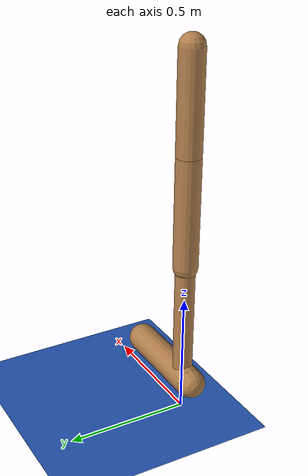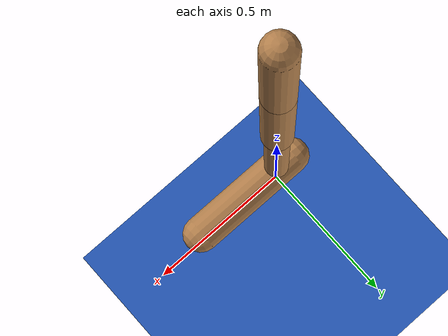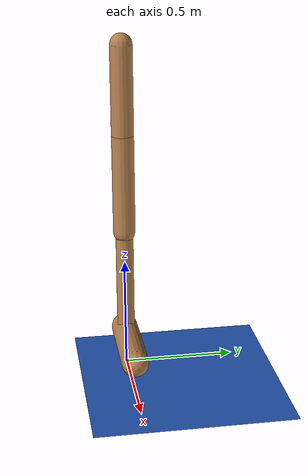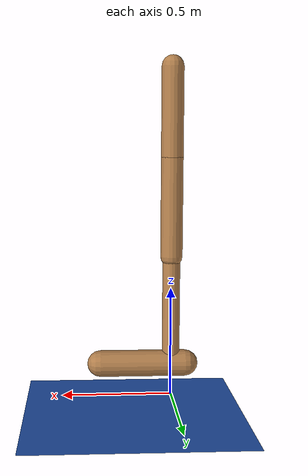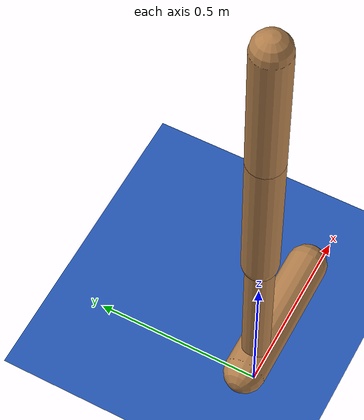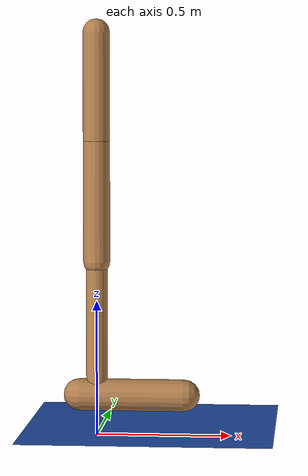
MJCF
<!-- will actually be the hopper task-->
<mujoco model="Acrobot Swing-Up">
  <include file="../common.xml"/>
  <include file="acrobot.xml" />

  <size memory="100K"/>

  <custom>
    <numeric name="agent_planner" data="0" />
    <numeric name="agent_horizon" data="0.8" />
    <numeric name="agent_timestep" data="0.01" />
    <numeric name="sampling_spline_points" data="3" />
    <numeric name="sampling_exploration" data="0.5" />
    <numeric name="gradient_spline_points" data="5" />
    <numeric name="residual_Height Goal" data="1.2 0.5 1.2" />
    <numeric name="residual_Speed Goal" data="0 -5.0 5.0" />
  </custom>

  <sensor>
    <user name="Control" dim="3" user="0 0.1 0.0 1.0" />
    <user name="Height" dim="1" user="0 10.0 0.0 10.0" />
    <user name="Rotation" dim="1" user="0 3.0 0.0 5.0" />
    <user name="Speed" dim="1" user="0 1.0 0.0 1.0" />
    <framepos      name="trace0" objtype="site" objname="torso_site"/>
    <framepos      name="torso_position" objtype="xbody" objname="torso"/>
    <subtreecom    name="torso_subtreecom" body="torso"/>
    <subtreelinvel name="torso_subtreelinvel" body="torso"/>
    <framezaxis    name="torso_zaxis" objtype="xbody" objname="torso"/>
  </sensor>
</mujoco>

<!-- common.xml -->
<mujoco>

    <visual>
        <headlight ambient=".4 .4 .4" diffuse=".8 .8 .8" specular="0.1 0.1 0.1"/>
        <map znear=".01"/>
        <quality shadowsize="2048"/>
        <global elevation="-15"/>
    </visual>

    <asset>
        <texture name="blue_grid" type="2d" builtin="checker" rgb1=".02 .14 .44" rgb2=".27 .55 1" width="300" height="300" mark="edge" markrgb="1 1 1"/>
        <material name="blue_grid" texture="blue_grid" texrepeat="1 1" texuniform="true" reflectance=".2"/>

        <texture name="grey_grid" type="2d" builtin="checker" rgb1=".26 .26 .26" rgb2=".6 .6 .6" width="300" height="300" mark="edge" markrgb="1 1 1"/>
        <material name="grey_grid" texture="grey_grid" texrepeat="1 1" texuniform="true" reflectance=".2"/>
        <texture name="skybox" type="skybox" builtin="gradient" rgb1=".66 .79 1" rgb2=".9 .91 .93" width="800" height="800"/>

        <material name="self" rgba=".7 .5 .3 1"/>
        <material name="self_default" rgba=".7 .5 .3 1"/>
        <material name="self_highlight" rgba="0 .5 .3 1"/>
        <material name="effector" rgba=".7 .4 .2 1"/>
        <material name="effector_default" rgba=".7 .4 .2 1"/>
        <material name="effector_highlight" rgba="0 .5 .3 1"/>
        <material name="decoration" rgba=".2 .6 .3 1"/>
        <material name="eye" rgba="0 .2 1 1"/>
        <material name="target" rgba=".6 .3 .3 1"/>
        <material name="target_default" rgba=".6 .3 .3 1"/>
        <material name="target_highlight" rgba=".6 .3 .3 .4"/>
        <material name="site" rgba=".5 .5 .5 .3"/>
    </asset>

    <size memory="1M"/>

    <statistic extent="0.4" center="0.3 0.1 0"/>

    <visual>
        <quality shadowsize="8192"/>
        <global azimuth="180" elevation="-30"/>
    </visual>

    <default>
        <geom friction="1.0"/>
    </default>

    <compiler angle="radian" autolimits="true"/>

    <asset>
        <mesh name="apple" file="../../shared_assets/apple/apple.obj" />
        <mesh name="apple_contact0" file="../../shared_assets/apple/contact0.stl"  />
        <mesh name="apple_contact1" file="../../shared_assets/apple/contact1.stl"  />

        <mesh name="doorknob" file="../../shared_assets/doorknob/doorknob.obj" />

        <mesh name="flashlight" file="../../shared_assets/flashlight/flashlight.obj" />
        <mesh name="flashlight_contact0" file="../../shared_assets/flashlight/contact0.stl"  />
        <mesh name="flashlight_contact1" file="../../shared_assets/flashlight/contact1.stl"  />

        <mesh name="hammer" file="../../shared_assets/hammer/hammer.obj" />
        <mesh name="hammer_contact0" file="../../shared_assets/hammer/contact0.stl"  />
        <mesh name="hammer_contact1" file="../../shared_assets/hammer/contact1.stl"  />

        <mesh name="phone" file="../../shared_assets/phone/phone.obj" />
        <mesh name="phone_contact0" file="../../shared_assets/phone/contact0.stl"  />
        <mesh name="phone_contact1" file="../../shared_assets/phone/contact1.stl"  />
        <mesh name="phone_contact2" file="../../shared_assets/phone/contact2.stl"  />

        <mesh name="stapler" file="../../shared_assets/stapler/stapler.obj" />
        <mesh name="stapler_contact0" file="../../shared_assets/stapler/contact0.stl"  />
        <mesh name="stapler_contact1" file="../../shared_assets/stapler/contact1.stl"  />
        <mesh name="stapler_contact2" file="../../shared_assets/stapler/contact2.stl"  />
        <mesh name="stapler_contact3" file="../../shared_assets/stapler/contact3.stl"  />
        <mesh name="stapler_contact4" file="../../shared_assets/stapler/contact4.stl"  />

        <mesh name="waterbottle" file="../../shared_assets/waterbottle/waterbottle.obj" />
        <mesh name="waterbottle_contact0" file="../../shared_assets/waterbottle/contact0.stl"  />
        <mesh name="waterbottle_contact1" file="../../shared_assets/waterbottle/contact1.stl"  />
    </asset>

</mujoco>

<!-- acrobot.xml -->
<mujoco model="acrobot">
  <option timestep="0.0025"/>

  <statistic extent="2" center="0 0 1"/>

  <default>
    <joint damping=".1" armature="0.01" limited="true" solimplimit="0 .99 .01"/>
    <geom contype="1" conaffinity="0" friction=".7 .1 .1"/>
    <motor ctrlrange="-1 1" ctrllimited="true"/>
    <site size="0.01"/>
    <default class="hopper">
      <geom material="self" type="capsule"/>
      <joint axis="0 -1 0"/>
    </default>
  </default>

  <worldbody>
    <geom name="floor" type="plane" conaffinity="1" pos="998 0 0" size="1000 .8 .2" material="blue_grid" zaxis="0 0 1"/>
    <camera name="sideon" pos="0 -10 5"  mode="targetbody" target="torso" fovy="45"/>
    <camera name="float_far" pos="-4 0 2" xyaxes="0 -1 0 .5 0 1" mode="trackcom" fovy="90"/>
    <camera name="NL_Tracking" pos="-2 -12 4" xyaxes="2 -1 0 .5 0 1" mode="trackcom" fovy="45"/>
    <!--pos = x, y, z-->
    <!-- description of position: x positive to the right, y positive into the screen, z positive going upwards-->
    <!-- xyaxes , currently points 45 degrees from x to y, slightly downwards-->
    <!-- xyaxes: (0,1,2,3,4,5)-->
    <!-- 0: 0 to 1: rotated towards +y axis. 1 to 2: rotate more towards +y axis-->
    <!-- 1: -1 to 1: flipped it some weird way. -1 to 0: directly parallel to floor, seems to be some sort of rotation-->

    <body name="torso" pos="0 0 1.3" childclass="hopper"> <!-- IHMPC: pos="0 0 1.3" OG:  pos="0 0 1.25"-->
      <light name="light" pos="0 0 2" mode="trackcom"/>
      <camera name="floating"  pos="-2 0 1" xyaxes="0 -1 0 .5 0 1" mode="trackcom" fovy="90"/>
      <camera name="egocentric"  pos=".25 0 .11" xyaxes="0 -1 0 0 0 1" fovy="90" />

      <joint name="rootz" axis="0 0 1" type="slide" limited="false" armature="0" damping="0" pos = "0 0 0" stiffness="0"/>
      <joint name="rootx" axis="1 0 0" type="slide" limited="false" armature="0" damping="0" pos = "0 0 0" stiffness="0"/>
      <joint name="rooty" axis="0 1 0" type="hinge" limited="false" armature="0" damping="0" pos = "0 0 0" stiffness="0"/>

      <geom name="torso" size="0.05 0.2" friction="0.9"/> <!-- IHMPC: "0.07 0.3" seems like OG version has a size (radius) of 0.05 and a length of 0.4 giving us: size = "0.05 0.4""-->
      <!-- for torso size: zeroth element seems to be radius size, and must be positive. 1st element is length-->
      <!-- after putting in what seems to be correct torso size, it is still the largest geom when it should be the smallest... maybe the others are too small?-->
      <site name="torso_site" pos="0 0 0" size="0.01"/>

      <body name="right_thigh" pos="0 0 -0.425"> <!-- IHMPC: pos="0 -.05 -0.3" OG:  pos="0 0 1.05"-->
        <joint name="right_hip" pos="0 0 0.225" range="-150 0"/> <!-- IHMPC: -20 100. OG: -150 0-->
        <geom name="right_thigh" size="0.05 0.225" friction="0.9"/> <!-- IHMPC pos: pos="0 0 -0.225" OG pos: fromto="0 0 1.45 0 0 1.05"-->
        <!-- IHMPC: size = "0.05 0.225" (radius=0.05 length=0.225) OG: size="0.05 length=0.45"-->
        <!-- for right_thigh: z must be negative (otherwise it goes upwards)-->

        <body name="right_leg" pos="0 0 -0.475"> <!-- IHMPC: pos="0 0 -0.7?" OG: pos="0 0 0.35"-->
          <joint name="right_knee" pos="0 0 0.25" range="-150 0"/>  <!-- IHMPC: -150 0. OG: -150 0-->
          <!-- right_knee IHMPC: pos = "0 0 0.25" -->
          <geom name="right_leg" size="0.04 0.25" friction="0.9"/> <!--IHMPC: size = "0.04 0.25" OG: size="0.04 0.5"-->

          <body name="right_foot" pos="0.13 0 -0.25"> <!-- IHMPC: pos="0.06 0 -0.25" OG: pos="0.13 0 0"-->
            <joint name="right_ankle" pos="-0.13 0 0" range="-45 45"/>  <!-- IHMPC: -45 45. OG: -45 45-->
            <geom name="right_foot" zaxis="1 0 0" size="0.06 0.195" friction="2.0"/> <!-- IHMPC: size="0.05 0.1" OG: size="0.06 "-->
          </body>
        </body>
      </body>
    </body>
  </worldbody>

  <actuator>
    <motor name="right_hip" joint="right_hip" gear="200"/> <!--IHMPC: 100. OG: 200-->
    <motor name="right_knee" joint="right_knee" gear="200"/> <!--IHMPC: 50. OG: 200-->
    <motor name="right_ankle" joint="right_ankle" gear="200"/> <!--IHMPC: 20. OG: 200-->
  </actuator>
</mujoco>
